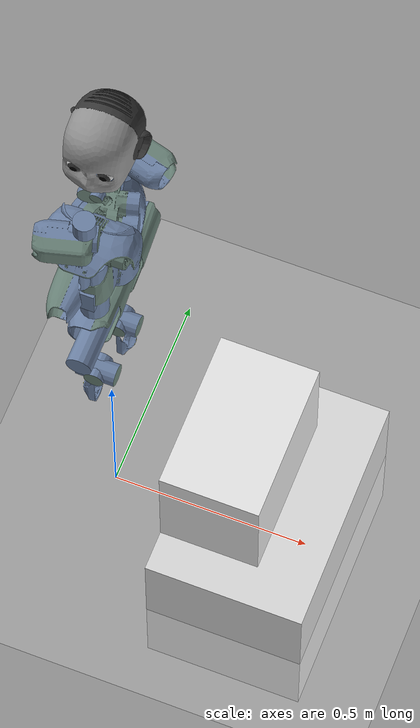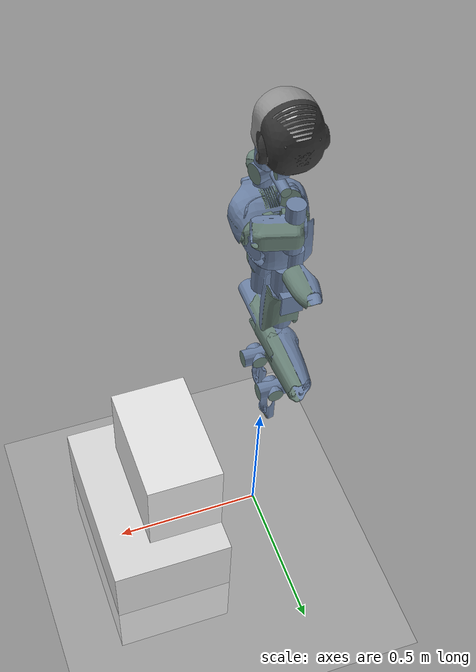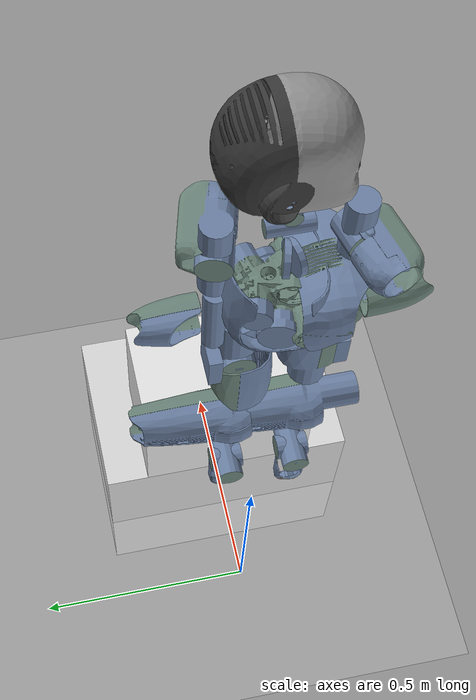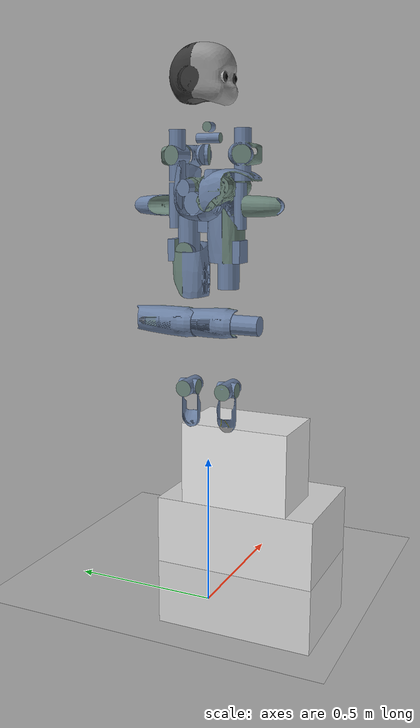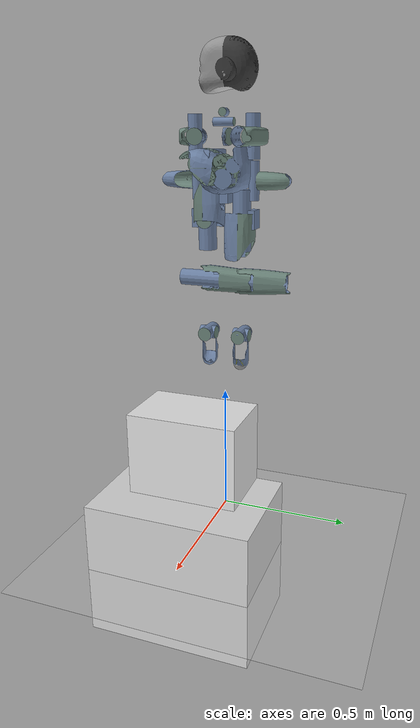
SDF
<?xml version="1.0"?>
<sdf version="1.8">
  <world name="default">
    <physics name="1ms" type="ignored">
      <max_step_size>0.001</max_step_size>
      <real_time_factor>1.0</real_time_factor>
    </physics>

    <plugin filename="gz-sim-physics-system" name="gz::sim::systems::Physics"/>
    <plugin filename="gz-sim-contact-system" name="gz::sim::systems::Contact"/>
    <plugin filename="gz-sim-user-commands-system" name="gz::sim::systems::UserCommands"/>
    <plugin filename="gz-sim-scene-broadcaster-system" name="gz::sim::systems::SceneBroadcaster">
      <state_hertz>30</state_hertz>
    </plugin>
    <plugin filename="gz-sim-sensors-system" name="gz::sim::systems::Sensors">
      <render_engine>ogre2</render_engine>
    </plugin>

    <light type="directional" name="sun">
      <cast_shadows>true</cast_shadows>
      <pose>0 0 10 0 0 0</pose>
      <diffuse>1 1 1 1</diffuse>
      <specular>0.5 0.5 0.5 1</specular>
      <direction>-0.5 0.1 -0.9</direction>
    </light>

    <model name="ground_plane">
      <static>true</static>
      <link name="link">
        <collision name="collision">
          <geometry>
            <plane>
              <normal>0 0 1</normal>
              <size>100 100</size>
            </plane>
          </geometry>
        </collision>
        <visual name="visual">
          <geometry>
            <plane>
              <normal>0 0 1</normal>
              <size>100 100</size>
            </plane>
          </geometry>
          <material>
            <ambient>0.8 0.8 0.8 1</ambient>
            <diffuse>0.8 0.8 0.8 1</diffuse>
            <specular>0.8 0.8 0.8 1</specular>
          </material>
        </visual>
      </link>
    </model>

    <include>
      <uri>model://icub_contact_release</uri>
      <name>iCub_fixed</name>
      <pose>0 0 -.4 0 0 0</pose>
    </include>

    <model name='box_table'>
      <static>true</static>
      <pose>0.40 0 0 0 0 0</pose>
      <link name='box'>
        <collision name='collision'>
          <geometry>
            <box><size>0.4 0.6 0.5</size></box>
          </geometry>
        </collision>
        <visual name='visual'>
          <geometry>
            <box><size>0.4 0.6 0.5</size></box>
          </geometry>
          <material>
            <ambient>0.85 0.85 0.85 1</ambient>
            <diffuse>0.85 0.85 0.85 1</diffuse>
          </material>
        </visual>
      </link>
    </model>

    <model name='object'>
      <static>true</static>
      <pose>0.325 0 0.40 0 0 0</pose>
      <link name='main'>
        <inertial>
          <mass>0.5</mass>
        </inertial>
        <collision name='collision'>
          <geometry>
            <box>
              <size>0.25 0.40 0.30</size>
            </box>
          </geometry>
        </collision>
        <visual name='visual'>
          <geometry>
            <box>
              <size>0.25 0.40 0.30</size>
            </box>
          </geometry>
          <material>
            <ambient>0.9 0.9 0.9 1</ambient>
            <diffuse>0.9 0.9 0.9 1</diffuse>
          </material>
        </visual>
      </link>
    </model>

    <!-- Primary comparison camera: side profile matched to the 2015 frame. -->
    <model name="release_camera">
      <static>true</static>
      <pose>-0.1 -3.5 1.10 0 0.20 1.48</pose>
      <link name="link">
        <sensor name="camera" type="camera">
          <camera>
            <horizontal_fov>0.82</horizontal_fov>
            <image>
              <width>1280</width>
              <height>720</height>
            </image>
            <clip>
              <near>0.1</near>
              <far>100</far>
            </clip>
          </camera>
          <always_on>1</always_on>
          <update_rate>30</update_rate>
          <visualize>false</visualize>
          <topic>release_camera</topic>
          <plugin filename="gz-sim-camera-video-recorder-system"
                  name="gz::sim::systems::CameraVideoRecorder">
            <service>camera/record_video</service>
            <use_sim_time>false</use_sim_time>
          </plugin>
        </sensor>
      </link>
    </model>

    <!-- Supplementary evidence camera: separates both hand arrows on screen. -->
    <model name="arrow_camera">
      <static>true</static>
      <pose>2.0 -2.2 1.30 0 0.23 2.30</pose>
      <link name="link">
        <sensor name="camera" type="camera">
          <camera>
            <horizontal_fov>0.95</horizontal_fov>
            <image>
              <width>1280</width>
              <height>720</height>
            </image>
            <clip>
              <near>0.1</near>
              <far>100</far>
            </clip>
          </camera>
          <always_on>1</always_on>
          <update_rate>30</update_rate>
          <visualize>false</visualize>
          <topic>arrow_camera</topic>
        </sensor>
      </link>
    </model>
  </world>
</sdf>

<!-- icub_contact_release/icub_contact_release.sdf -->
<sdf version='1.4'>
  <model name="iCub_fixed">
    <include>
      <uri>model://icub</uri>
      <pose>0.0 0 1.0 0 0 3.14</pose>

      <plugin filename="gz-sim-joint-position-controller-system"
              name="gz::sim::systems::JointPositionController">
        <joint_name>l_hip_pitch</joint_name>
        <topic_name>/grasp_demo/l_hip_pitch</topic_name>
        <p_gain>1000</p_gain>
        <i_gain>10</i_gain>
        <d_gain>10</d_gain>
        <initial_position>0</initial_position>
      </plugin>
      <plugin filename="gz-sim-joint-position-controller-system"
              name="gz::sim::systems::JointPositionController">
        <joint_name>l_hip_roll</joint_name>
        <topic_name>/grasp_demo/l_hip_roll</topic_name>
        <p_gain>1000</p_gain>
        <i_gain>10</i_gain>
        <d_gain>10</d_gain>
        <initial_position>0</initial_position>
      </plugin>
      <plugin filename="gz-sim-joint-position-controller-system"
              name="gz::sim::systems::JointPositionController">
        <joint_name>l_hip_yaw</joint_name>
        <topic_name>/grasp_demo/l_hip_yaw</topic_name>
        <p_gain>1000</p_gain>
        <i_gain>10</i_gain>
        <d_gain>10</d_gain>
        <initial_position>0</initial_position>
      </plugin>
      <plugin filename="gz-sim-joint-position-controller-system"
              name="gz::sim::systems::JointPositionController">
        <joint_name>l_knee</joint_name>
        <topic_name>/grasp_demo/l_knee</topic_name>
        <p_gain>1000</p_gain>
        <i_gain>10</i_gain>
        <d_gain>10</d_gain>
        <initial_position>0</initial_position>
      </plugin>
      <plugin filename="gz-sim-joint-position-controller-system"
              name="gz::sim::systems::JointPositionController">
        <joint_name>l_ankle_pitch</joint_name>
        <topic_name>/grasp_demo/l_ankle_pitch</topic_name>
        <p_gain>1000</p_gain>
        <i_gain>10</i_gain>
        <d_gain>10</d_gain>
        <initial_position>0</initial_position>
      </plugin>
      <plugin filename="gz-sim-joint-position-controller-system"
              name="gz::sim::systems::JointPositionController">
        <joint_name>l_ankle_roll</joint_name>
        <topic_name>/grasp_demo/l_ankle_roll</topic_name>
        <p_gain>1000</p_gain>
        <i_gain>10</i_gain>
        <d_gain>10</d_gain>
        <initial_position>0</initial_position>
      </plugin>
      <plugin filename="gz-sim-joint-position-controller-system"
              name="gz::sim::systems::JointPositionController">
        <joint_name>r_hip_pitch</joint_name>
        <topic_name>/grasp_demo/r_hip_pitch</topic_name>
        <p_gain>1000</p_gain>
        <i_gain>10</i_gain>
        <d_gain>10</d_gain>
        <initial_position>0</initial_position>
      </plugin>
      <plugin filename="gz-sim-joint-position-controller-system"
              name="gz::sim::systems::JointPositionController">
        <joint_name>r_hip_roll</joint_name>
        <topic_name>/grasp_demo/r_hip_roll</topic_name>
        <p_gain>1000</p_gain>
        <i_gain>10</i_gain>
        <d_gain>10</d_gain>
        <initial_position>0</initial_position>
      </plugin>
      <plugin filename="gz-sim-joint-position-controller-system"
              name="gz::sim::systems::JointPositionController">
        <joint_name>r_hip_yaw</joint_name>
        <topic_name>/grasp_demo/r_hip_yaw</topic_name>
        <p_gain>1000</p_gain>
        <i_gain>10</i_gain>
        <d_gain>10</d_gain>
        <initial_position>0</initial_position>
      </plugin>
      <plugin filename="gz-sim-joint-position-controller-system"
              name="gz::sim::systems::JointPositionController">
        <joint_name>r_knee</joint_name>
        <topic_name>/grasp_demo/r_knee</topic_name>
        <p_gain>1000</p_gain>
        <i_gain>10</i_gain>
        <d_gain>10</d_gain>
        <initial_position>0</initial_position>
      </plugin>
      <plugin filename="gz-sim-joint-position-controller-system"
              name="gz::sim::systems::JointPositionController">
        <joint_name>r_ankle_pitch</joint_name>
        <topic_name>/grasp_demo/r_ankle_pitch</topic_name>
        <p_gain>1000</p_gain>
        <i_gain>10</i_gain>
        <d_gain>10</d_gain>
        <initial_position>0</initial_position>
      </plugin>
      <plugin filename="gz-sim-joint-position-controller-system"
              name="gz::sim::systems::JointPositionController">
        <joint_name>r_ankle_roll</joint_name>
        <topic_name>/grasp_demo/r_ankle_roll</topic_name>
        <p_gain>1000</p_gain>
        <i_gain>10</i_gain>
        <d_gain>10</d_gain>
        <initial_position>0</initial_position>
      </plugin>
      <plugin filename="gz-sim-joint-position-controller-system"
              name="gz::sim::systems::JointPositionController">
        <joint_name>torso_yaw</joint_name>
        <topic_name>/grasp_demo/torso_yaw</topic_name>
        <p_gain>100</p_gain>
        <i_gain>10</i_gain>
        <d_gain>10</d_gain>
        <initial_position>0</initial_position>
      </plugin>
      <plugin filename="gz-sim-joint-position-controller-system"
              name="gz::sim::systems::JointPositionController">
        <joint_name>torso_roll</joint_name>
        <topic_name>/grasp_demo/torso_roll</topic_name>
        <p_gain>100</p_gain>
        <i_gain>10</i_gain>
        <d_gain>10</d_gain>
        <initial_position>0</initial_position>
      </plugin>
      <plugin filename="gz-sim-joint-position-controller-system"
              name="gz::sim::systems::JointPositionController">
        <joint_name>torso_pitch</joint_name>
        <topic_name>/grasp_demo/torso_pitch</topic_name>
        <p_gain>100</p_gain>
        <i_gain>10</i_gain>
        <d_gain>10</d_gain>
        <initial_position>0</initial_position>
      </plugin>
      <plugin filename="gz-sim-joint-position-controller-system"
              name="gz::sim::systems::JointPositionController">
        <joint_name>neck_pitch</joint_name>
        <topic_name>/grasp_demo/neck_pitch</topic_name>
        <p_gain>50</p_gain>
        <i_gain>7</i_gain>
        <d_gain>0.1</d_gain>
        <initial_position>0</initial_position>
      </plugin>
      <plugin filename="gz-sim-joint-position-controller-system"
              name="gz::sim::systems::JointPositionController">
        <joint_name>neck_roll</joint_name>
        <topic_name>/grasp_demo/neck_roll</topic_name>
        <p_gain>50</p_gain>
        <i_gain>7</i_gain>
        <d_gain>0.1</d_gain>
        <initial_position>0</initial_position>
      </plugin>
      <plugin filename="gz-sim-joint-position-controller-system"
              name="gz::sim::systems::JointPositionController">
        <joint_name>neck_yaw</joint_name>
        <topic_name>/grasp_demo/neck_yaw</topic_name>
        <p_gain>50</p_gain>
        <i_gain>7</i_gain>
        <d_gain>0.1</d_gain>
        <initial_position>0</initial_position>
      </plugin>
      <plugin filename="gz-sim-joint-position-controller-system"
              name="gz::sim::systems::JointPositionController">
        <joint_name>l_shoulder_pitch</joint_name>
        <topic_name>/grasp_demo/l_shoulder_pitch</topic_name>
        <p_gain>100</p_gain>
        <i_gain>10</i_gain>
        <d_gain>10</d_gain>
        <initial_position>-0.52</initial_position>
      </plugin>
      <plugin filename="gz-sim-joint-position-controller-system"
              name="gz::sim::systems::JointPositionController">
        <joint_name>l_shoulder_roll</joint_name>
        <topic_name>/grasp_demo/l_shoulder_roll</topic_name>
        <p_gain>100</p_gain>
        <i_gain>10</i_gain>
        <d_gain>10</d_gain>
        <initial_position>0.52</initial_position>
      </plugin>
      <plugin filename="gz-sim-joint-position-controller-system"
              name="gz::sim::systems::JointPositionController">
        <joint_name>l_shoulder_yaw</joint_name>
        <topic_name>/grasp_demo/l_shoulder_yaw</topic_name>
        <p_gain>100</p_gain>
        <i_gain>10</i_gain>
        <d_gain>10</d_gain>
        <initial_position>0</initial_position>
      </plugin>
      <plugin filename="gz-sim-joint-position-controller-system"
              name="gz::sim::systems::JointPositionController">
        <joint_name>l_elbow</joint_name>
        <topic_name>/grasp_demo/l_elbow</topic_name>
        <p_gain>100</p_gain>
        <i_gain>10</i_gain>
        <d_gain>10</d_gain>
        <initial_position>0.785</initial_position>
      </plugin>
      <plugin filename="gz-sim-joint-position-controller-system"
              name="gz::sim::systems::JointPositionController">
        <joint_name>l_wrist_prosup</joint_name>
        <topic_name>/grasp_demo/l_wrist_prosup</topic_name>
        <p_gain>100</p_gain>
        <i_gain>10</i_gain>
        <d_gain>10</d_gain>
        <initial_position>0</initial_position>
      </plugin>
      <plugin filename="gz-sim-joint-position-controller-system"
              name="gz::sim::systems::JointPositionController">
        <joint_name>l_wrist_pitch</joint_name>
        <topic_name>/grasp_demo/l_wrist_pitch</topic_name>
        <p_gain>100</p_gain>
        <i_gain>10</i_gain>
        <d_gain>10</d_gain>
        <initial_position>0</initial_position>
      </plugin>
      <plugin filename="gz-sim-joint-position-controller-system"
              name="gz::sim::systems::JointPositionController">
        <joint_name>l_wrist_yaw</joint_name>
        <topic_name>/grasp_demo/l_wrist_yaw</topic_name>
        <p_gain>100</p_gain>
        <i_gain>10</i_gain>
        <d_gain>10</d_gain>
        <initial_position>0.698</initial_position>
      </plugin>
      <plugin filename="gz-sim-joint-position-controller-system"
              name="gz::sim::systems::JointPositionController">
        <joint_name>r_shoulder_pitch</joint_name>
        <topic_name>/grasp_demo/r_shoulder_pitch</topic_name>
        <p_gain>100</p_gain>
        <i_gain>10</i_gain>
        <d_gain>10</d_gain>
        <initial_position>-0.52</initial_position>
      </plugin>
      <plugin filename="gz-sim-joint-position-controller-system"
              name="gz::sim::systems::JointPositionController">
        <joint_name>r_shoulder_roll</joint_name>
        <topic_name>/grasp_demo/r_shoulder_roll</topic_name>
        <p_gain>100</p_gain>
        <i_gain>10</i_gain>
        <d_gain>10</d_gain>
        <initial_position>0.52</initial_position>
      </plugin>
      <plugin filename="gz-sim-joint-position-controller-system"
              name="gz::sim::systems::JointPositionController">
        <joint_name>r_shoulder_yaw</joint_name>
        <topic_name>/grasp_demo/r_shoulder_yaw</topic_name>
        <p_gain>100</p_gain>
        <i_gain>10</i_gain>
        <d_gain>10</d_gain>
        <initial_position>0</initial_position>
      </plugin>
      <plugin filename="gz-sim-joint-position-controller-system"
              name="gz::sim::systems::JointPositionController">
        <joint_name>r_elbow</joint_name>
        <topic_name>/grasp_demo/r_elbow</topic_name>
        <p_gain>100</p_gain>
        <i_gain>10</i_gain>
        <d_gain>10</d_gain>
        <initial_position>0.785</initial_position>
      </plugin>
      <plugin filename="gz-sim-joint-position-controller-system"
              name="gz::sim::systems::JointPositionController">
        <joint_name>r_wrist_prosup</joint_name>
        <topic_name>/grasp_demo/r_wrist_prosup</topic_name>
        <p_gain>100</p_gain>
        <i_gain>10</i_gain>
        <d_gain>10</d_gain>
        <initial_position>0</initial_position>
      </plugin>
      <plugin filename="gz-sim-joint-position-controller-system"
              name="gz::sim::systems::JointPositionController">
        <joint_name>r_wrist_pitch</joint_name>
        <topic_name>/grasp_demo/r_wrist_pitch</topic_name>
        <p_gain>100</p_gain>
        <i_gain>10</i_gain>
        <d_gain>10</d_gain>
        <initial_position>0</initial_position>
      </plugin>
      <plugin filename="gz-sim-joint-position-controller-system"
              name="gz::sim::systems::JointPositionController">
        <joint_name>r_wrist_yaw</joint_name>
        <topic_name>/grasp_demo/r_wrist_yaw</topic_name>
        <p_gain>100</p_gain>
        <i_gain>10</i_gain>
        <d_gain>10</d_gain>
        <initial_position>0.698</initial_position>
      </plugin>

    </include>

    <joint name="fixed to ground" type="fixed">
      <parent>world</parent>
      <child>iCub::root_link</child>
    </joint>
  </model>
</sdf>
